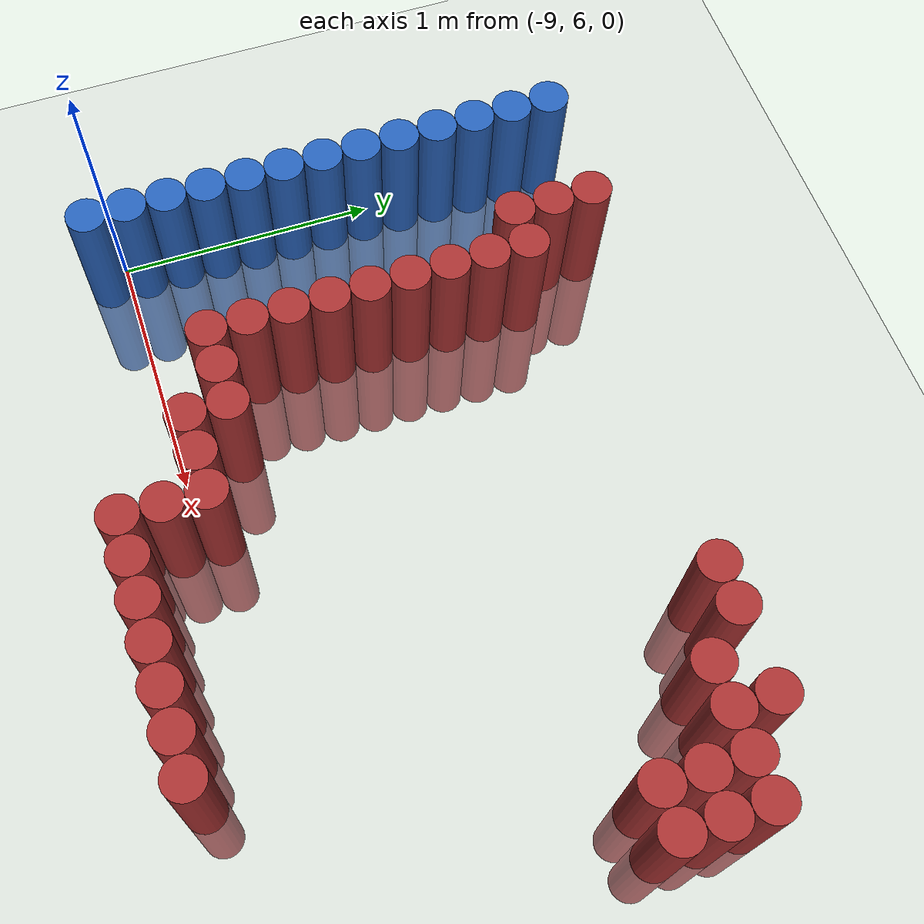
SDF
<sdf version="1.6">
 <world name="default">
  <model name="ground_plane">
   <static>1</static>
   <link name="link">
    <collision name="collision">
     <geometry><plane><normal>0 0 1</normal><size>100 100</size></plane></geometry>
     <surface><friction><ode><mu>100</mu><mu2>50</mu2></ode></friction></surface>
    </collision>
    <visual name="visual">
     <cast_shadows>0</cast_shadows>
     <geometry><plane><normal>0 0 1</normal><size>100 100</size></plane></geometry>
     <material>
      <script><uri>file://media/materials/scripts/gazebo.material</uri><name>Gazebo/Grey</name></script>
     </material>
    </visual>
   </link>
  </model>
  <model name="unit_cylinder_130">
   <static>1</static>
   <pose>-8.925000 5.925000 0.000000 0.000000 0.000000 0.000000</pose>
   <link name="link">
    <inertial>
     <mass>1</mass>
     <inertia><ixx>0.145833</ixx><ixy>0</ixy><ixz>0</ixz><iyy>0.145833</iyy><iyz>0</iyz><izz>0.125</izz></inertia>
    </inertial>
    <collision name="collision">
     <geometry><cylinder><radius>0.075000</radius><length>1</length></cylinder></geometry>
    </collision>
    <visual name="visual">
     <geometry><cylinder><radius>0.075000</radius><length>1</length></cylinder></geometry>
     <material>
      <ambient>0.152000 0.379000 0.720000 1</ambient>
      <diffuse>0.152000 0.379000 0.720000 1</diffuse>
     </material>
     <material>
      <script><name>Gazebo/Grey</name><uri>file://media/materials/scripts/gazebo.material</uri></script>
     </material>
    </visual>
   </link>
  </model>
  <model name="unit_cylinder_131">
   <static>1</static>
   <pose>-8.925000 6.075000 0.000000 0.000000 0.000000 0.000000</pose>
   <link name="link">
    <inertial>
     <mass>1</mass>
     <inertia><ixx>0.145833</ixx><ixy>0</ixy><ixz>0</ixz><iyy>0.145833</iyy><iyz>0</iyz><izz>0.125</izz></inertia>
    </inertial>
    <collision name="collision">
     <geometry><cylinder><radius>0.075000</radius><length>1</length></cylinder></geometry>
    </collision>
    <visual name="visual">
     <geometry><cylinder><radius>0.075000</radius><length>1</length></cylinder></geometry>
     <material>
      <ambient>0.152000 0.379000 0.720000 1</ambient>
      <diffuse>0.152000 0.379000 0.720000 1</diffuse>
     </material>
     <material>
      <script><name>Gazebo/Grey</name><uri>file://media/materials/scripts/gazebo.material</uri></script>
     </material>
    </visual>
   </link>
  </model>
  <model name="unit_cylinder_132">
   <static>1</static>
   <pose>-8.925000 6.225000 0.000000 0.000000 0.000000 0.000000</pose>
   <link name="link">
    <inertial>
     <mass>1</mass>
     <inertia><ixx>0.145833</ixx><ixy>0</ixy><ixz>0</ixz><iyy>0.145833</iyy><iyz>0</iyz><izz>0.125</izz></inertia>
    </inertial>
    <collision name="collision">
     <geometry><cylinder><radius>0.075000</radius><length>1</length></cylinder></geometry>
    </collision>
    <visual name="visual">
     <geometry><cylinder><radius>0.075000</radius><length>1</length></cylinder></geometry>
     <material>
      <ambient>0.152000 0.379000 0.720000 1</ambient>
      <diffuse>0.152000 0.379000 0.720000 1</diffuse>
     </material>
     <material>
      <script><name>Gazebo/Grey</name><uri>file://media/materials/scripts/gazebo.material</uri></script>
     </material>
    </visual>
   </link>
  </model>
  <model name="unit_cylinder_133">
   <static>1</static>
   <pose>-8.925000 6.375000 0.000000 0.000000 0.000000 0.000000</pose>
   <link name="link">
    <inertial>
     <mass>1</mass>
     <inertia><ixx>0.145833</ixx><ixy>0</ixy><ixz>0</ixz><iyy>0.145833</iyy><iyz>0</iyz><izz>0.125</izz></inertia>
    </inertial>
    <collision name="collision">
     <geometry><cylinder><radius>0.075000</radius><length>1</length></cylinder></geometry>
    </collision>
    <visual name="visual">
     <geometry><cylinder><radius>0.075000</radius><length>1</length></cylinder></geometry>
     <material>
      <ambient>0.152000 0.379000 0.720000 1</ambient>
      <diffuse>0.152000 0.379000 0.720000 1</diffuse>
     </material>
     <material>
      <script><name>Gazebo/Grey</name><uri>file://media/materials/scripts/gazebo.material</uri></script>
     </material>
    </visual>
   </link>
  </model>
  <model name="unit_cylinder_134">
   <static>1</static>
   <pose>-8.925000 6.525000 0.000000 0.000000 0.000000 0.000000</pose>
   <link name="link">
    <inertial>
     <mass>1</mass>
     <inertia><ixx>0.145833</ixx><ixy>0</ixy><ixz>0</ixz><iyy>0.145833</iyy><iyz>0</iyz><izz>0.125</izz></inertia>
    </inertial>
    <collision name="collision">
     <geometry><cylinder><radius>0.075000</radius><length>1</length></cylinder></geometry>
    </collision>
    <visual name="visual">
     <geometry><cylinder><radius>0.075000</radius><length>1</length></cylinder></geometry>
     <material>
      <ambient>0.152000 0.379000 0.720000 1</ambient>
      <diffuse>0.152000 0.379000 0.720000 1</diffuse>
     </material>
     <material>
      <script><name>Gazebo/Grey</name><uri>file://media/materials/scripts/gazebo.material</uri></script>
     </material>
    </visual>
   </link>
  </model>
  <model name="unit_cylinder_135">
   <static>1</static>
   <pose>-8.925000 6.675000 0.000000 0.000000 0.000000 0.000000</pose>
   <link name="link">
    <inertial>
     <mass>1</mass>
     <inertia><ixx>0.145833</ixx><ixy>0</ixy><ixz>0</ixz><iyy>0.145833</iyy><iyz>0</iyz><izz>0.125</izz></inertia>
    </inertial>
    <collision name="collision">
     <geometry><cylinder><radius>0.075000</radius><length>1</length></cylinder></geometry>
    </collision>
    <visual name="visual">
     <geometry><cylinder><radius>0.075000</radius><length>1</length></cylinder></geometry>
     <material>
      <ambient>0.152000 0.379000 0.720000 1</ambient>
      <diffuse>0.152000 0.379000 0.720000 1</diffuse>
     </material>
     <material>
      <script><name>Gazebo/Grey</name><uri>file://media/materials/scripts/gazebo.material</uri></script>
     </material>
    </visual>
   </link>
  </model>
  <model name="unit_cylinder_136">
   <static>1</static>
   <pose>-8.925000 6.825000 0.000000 0.000000 0.000000 0.000000</pose>
   <link name="link">
    <inertial>
     <mass>1</mass>
     <inertia><ixx>0.145833</ixx><ixy>0</ixy><ixz>0</ixz><iyy>0.145833</iyy><iyz>0</iyz><izz>0.125</izz></inertia>
    </inertial>
    <collision name="collision">
     <geometry><cylinder><radius>0.075000</radius><length>1</length></cylinder></geometry>
    </collision>
    <visual name="visual">
     <geometry><cylinder><radius>0.075000</radius><length>1</length></cylinder></geometry>
     <material>
      <ambient>0.152000 0.379000 0.720000 1</ambient>
      <diffuse>0.152000 0.379000 0.720000 1</diffuse>
     </material>
     <material>
      <script><name>Gazebo/Grey</name><uri>file://media/materials/scripts/gazebo.material</uri></script>
     </material>
    </visual>
   </link>
  </model>
  <model name="unit_cylinder_137">
   <static>1</static>
   <pose>-8.925000 6.975000 0.000000 0.000000 0.000000 0.000000</pose>
   <link name="link">
    <inertial>
     <mass>1</mass>
     <inertia><ixx>0.145833</ixx><ixy>0</ixy><ixz>0</ixz><iyy>0.145833</iyy><iyz>0</iyz><izz>0.125</izz></inertia>
    </inertial>
    <collision name="collision">
     <geometry><cylinder><radius>0.075000</radius><length>1</length></cylinder></geometry>
    </collision>
    <visual name="visual">
     <geometry><cylinder><radius>0.075000</radius><length>1</length></cylinder></geometry>
     <material>
      <ambient>0.152000 0.379000 0.720000 1</ambient>
      <diffuse>0.152000 0.379000 0.720000 1</diffuse>
     </material>
     <material>
      <script><name>Gazebo/Grey</name><uri>file://media/materials/scripts/gazebo.material</uri></script>
     </material>
    </visual>
   </link>
  </model>
  <model name="unit_cylinder_138">
   <static>1</static>
   <pose>-8.925000 7.125000 0.000000 0.000000 0.000000 0.000000</pose>
   <link name="link">
    <inertial>
     <mass>1</mass>
     <inertia><ixx>0.145833</ixx><ixy>0</ixy><ixz>0</ixz><iyy>0.145833</iyy><iyz>0</iyz><izz>0.125</izz></inertia>
    </inertial>
    <collision name="collision">
     <geometry><cylinder><radius>0.075000</radius><length>1</length></cylinder></geometry>
    </collision>
    <visual name="visual">
     <geometry><cylinder><radius>0.075000</radius><length>1</length></cylinder></geometry>
     <material>
      <ambient>0.152000 0.379000 0.720000 1</ambient>
      <diffuse>0.152000 0.379000 0.720000 1</diffuse>
     </material>
     <material>
      <script><name>Gazebo/Grey</name><uri>file://media/materials/scripts/gazebo.material</uri></script>
     </material>
    </visual>
   </link>
  </model>
  <model name="unit_cylinder_139">
   <static>1</static>
   <pose>-8.925000 7.275000 0.000000 0.000000 0.000000 0.000000</pose>
   <link name="link">
    <inertial>
     <mass>1</mass>
     <inertia><ixx>0.145833</ixx><ixy>0</ixy><ixz>0</ixz><iyy>0.145833</iyy><iyz>0</iyz><izz>0.125</izz></inertia>
    </inertial>
    <collision name="collision">
     <geometry><cylinder><radius>0.075000</radius><length>1</length></cylinder></geometry>
    </collision>
    <visual name="visual">
     <geometry><cylinder><radius>0.075000</radius><length>1</length></cylinder></geometry>
     <material>
      <ambient>0.152000 0.379000 0.720000 1</ambient>
      <diffuse>0.152000 0.379000 0.720000 1</diffuse>
     </material>
     <material>
      <script><name>Gazebo/Grey</name><uri>file://media/materials/scripts/gazebo.material</uri></script>
     </material>
    </visual>
   </link>
  </model>
  <model name="unit_cylinder_140">
   <static>1</static>
   <pose>-8.925000 7.425000 0.000000 0.000000 0.000000 0.000000</pose>
   <link name="link">
    <inertial>
     <mass>1</mass>
     <inertia><ixx>0.145833</ixx><ixy>0</ixy><ixz>0</ixz><iyy>0.145833</iyy><iyz>0</iyz><izz>0.125</izz></inertia>
    </inertial>
    <collision name="collision">
     <geometry><cylinder><radius>0.075000</radius><length>1</length></cylinder></geometry>
    </collision>
    <visual name="visual">
     <geometry><cylinder><radius>0.075000</radius><length>1</length></cylinder></geometry>
     <material>
      <ambient>0.152000 0.379000 0.720000 1</ambient>
      <diffuse>0.152000 0.379000 0.720000 1</diffuse>
     </material>
     <material>
      <script><name>Gazebo/Grey</name><uri>file://media/materials/scripts/gazebo.material</uri></script>
     </material>
    </visual>
   </link>
  </model>
  <model name="unit_cylinder_141">
   <static>1</static>
   <pose>-8.925000 7.575000 0.000000 0.000000 0.000000 0.000000</pose>
   <link name="link">
    <inertial>
     <mass>1</mass>
     <inertia><ixx>0.145833</ixx><ixy>0</ixy><ixz>0</ixz><iyy>0.145833</iyy><iyz>0</iyz><izz>0.125</izz></inertia>
    </inertial>
    <collision name="collision">
     <geometry><cylinder><radius>0.075000</radius><length>1</length></cylinder></geometry>
    </collision>
    <visual name="visual">
     <geometry><cylinder><radius>0.075000</radius><length>1</length></cylinder></geometry>
     <material>
      <ambient>0.152000 0.379000 0.720000 1</ambient>
      <diffuse>0.152000 0.379000 0.720000 1</diffuse>
     </material>
     <material>
      <script><name>Gazebo/Grey</name><uri>file://media/materials/scripts/gazebo.material</uri></script>
     </material>
    </visual>
   </link>
  </model>
  <model name="unit_cylinder_142">
   <static>1</static>
   <pose>-8.925000 7.725000 0.000000 0.000000 0.000000 0.000000</pose>
   <link name="link">
    <inertial>
     <mass>1</mass>
     <inertia><ixx>0.145833</ixx><ixy>0</ixy><ixz>0</ixz><iyy>0.145833</iyy><iyz>0</iyz><izz>0.125</izz></inertia>
    </inertial>
    <collision name="collision">
     <geometry><cylinder><radius>0.075000</radius><length>1</length></cylinder></geometry>
    </collision>
    <visual name="visual">
     <geometry><cylinder><radius>0.075000</radius><length>1</length></cylinder></geometry>
     <material>
      <ambient>0.152000 0.379000 0.720000 1</ambient>
      <diffuse>0.152000 0.379000 0.720000 1</diffuse>
     </material>
     <material>
      <script><name>Gazebo/Grey</name><uri>file://media/materials/scripts/gazebo.material</uri></script>
     </material>
    </visual>
   </link>
  </model>
  <model name="unit_cylinder_160">
   <static>1</static>
   <pose>-8.475000 7.425000 0.000000 0.000000 0.000000 0.000000</pose>
   <link name="link">
    <inertial>
     <mass>1</mass>
     <inertia><ixx>0.145833</ixx><ixy>0</ixy><ixz>0</ixz><iyy>0.145833</iyy><iyz>0</iyz><izz>0.125</izz></inertia>
    </inertial>
    <collision name="collision">
     <geometry><cylinder><radius>0.075000</radius><length>1</length></cylinder></geometry>
    </collision>
    <visual name="visual">
     <geometry><cylinder><radius>0.075000</radius><length>1</length></cylinder></geometry>
     <material>
      <ambient>0.648000 0.192000 0.192000 1</ambient>
      <diffuse>0.648000 0.192000 0.192000 1</diffuse>
     </material>
     <material>
      <script><name>Gazebo/Grey</name><uri>file://media/materials/scripts/gazebo.material</uri></script>
     </material>
    </visual>
   </link>
  </model>
  <model name="unit_cylinder_161">
   <static>1</static>
   <pose>-8.475000 7.575000 0.000000 0.000000 0.000000 0.000000</pose>
   <link name="link">
    <inertial>
     <mass>1</mass>
     <inertia><ixx>0.145833</ixx><ixy>0</ixy><ixz>0</ixz><iyy>0.145833</iyy><iyz>0</iyz><izz>0.125</izz></inertia>
    </inertial>
    <collision name="collision">
     <geometry><cylinder><radius>0.075000</radius><length>1</length></cylinder></geometry>
    </collision>
    <visual name="visual">
     <geometry><cylinder><radius>0.075000</radius><length>1</length></cylinder></geometry>
     <material>
      <ambient>0.648000 0.192000 0.192000 1</ambient>
      <diffuse>0.648000 0.192000 0.192000 1</diffuse>
     </material>
     <material>
      <script><name>Gazebo/Grey</name><uri>file://media/materials/scripts/gazebo.material</uri></script>
     </material>
    </visual>
   </link>
  </model>
  <model name="unit_cylinder_162">
   <static>1</static>
   <pose>-8.475000 7.725000 0.000000 0.000000 0.000000 0.000000</pose>
   <link name="link">
    <inertial>
     <mass>1</mass>
     <inertia><ixx>0.145833</ixx><ixy>0</ixy><ixz>0</ixz><iyy>0.145833</iyy><iyz>0</iyz><izz>0.125</izz></inertia>
    </inertial>
    <collision name="collision">
     <geometry><cylinder><radius>0.075000</radius><length>1</length></cylinder></geometry>
    </collision>
    <visual name="visual">
     <geometry><cylinder><radius>0.075000</radius><length>1</length></cylinder></geometry>
     <material>
      <ambient>0.648000 0.192000 0.192000 1</ambient>
      <diffuse>0.648000 0.192000 0.192000 1</diffuse>
     </material>
     <material>
      <script><name>Gazebo/Grey</name><uri>file://media/materials/scripts/gazebo.material</uri></script>
     </material>
    </visual>
   </link>
  </model>
  <model name="unit_cylinder_176">
   <static>1</static>
   <pose>-8.325000 6.225000 0.000000 0.000000 0.000000 0.000000</pose>
   <link name="link">
    <inertial>
     <mass>1</mass>
     <inertia><ixx>0.145833</ixx><ixy>0</ixy><ixz>0</ixz><iyy>0.145833</iyy><iyz>0</iyz><izz>0.125</izz></inertia>
    </inertial>
    <collision name="collision">
     <geometry><cylinder><radius>0.075000</radius><length>1</length></cylinder></geometry>
    </collision>
    <visual name="visual">
     <geometry><cylinder><radius>0.075000</radius><length>1</length></cylinder></geometry>
     <material>
      <ambient>0.648000 0.192000 0.192000 1</ambient>
      <diffuse>0.648000 0.192000 0.192000 1</diffuse>
     </material>
     <material>
      <script><name>Gazebo/Grey</name><uri>file://media/materials/scripts/gazebo.material</uri></script>
     </material>
    </visual>
   </link>
  </model>
  <model name="unit_cylinder_177">
   <static>1</static>
   <pose>-8.325000 6.375000 0.000000 0.000000 0.000000 0.000000</pose>
   <link name="link">
    <inertial>
     <mass>1</mass>
     <inertia><ixx>0.145833</ixx><ixy>0</ixy><ixz>0</ixz><iyy>0.145833</iyy><iyz>0</iyz><izz>0.125</izz></inertia>
    </inertial>
    <collision name="collision">
     <geometry><cylinder><radius>0.075000</radius><length>1</length></cylinder></geometry>
    </collision>
    <visual name="visual">
     <geometry><cylinder><radius>0.075000</radius><length>1</length></cylinder></geometry>
     <material>
      <ambient>0.648000 0.192000 0.192000 1</ambient>
      <diffuse>0.648000 0.192000 0.192000 1</diffuse>
     </material>
     <material>
      <script><name>Gazebo/Grey</name><uri>file://media/materials/scripts/gazebo.material</uri></script>
     </material>
    </visual>
   </link>
  </model>
  <model name="unit_cylinder_178">
   <static>1</static>
   <pose>-8.325000 6.525000 0.000000 0.000000 0.000000 0.000000</pose>
   <link name="link">
    <inertial>
     <mass>1</mass>
     <inertia><ixx>0.145833</ixx><ixy>0</ixy><ixz>0</ixz><iyy>0.145833</iyy><iyz>0</iyz><izz>0.125</izz></inertia>
    </inertial>
    <collision name="collision">
     <geometry><cylinder><radius>0.075000</radius><length>1</length></cylinder></geometry>
    </collision>
    <visual name="visual">
     <geometry><cylinder><radius>0.075000</radius><length>1</length></cylinder></geometry>
     <material>
      <ambient>0.648000 0.192000 0.192000 1</ambient>
      <diffuse>0.648000 0.192000 0.192000 1</diffuse>
     </material>
     <material>
      <script><name>Gazebo/Grey</name><uri>file://media/materials/scripts/gazebo.material</uri></script>
     </material>
    </visual>
   </link>
  </model>
  <model name="unit_cylinder_179">
   <static>1</static>
   <pose>-8.325000 6.675000 0.000000 0.000000 0.000000 0.000000</pose>
   <link name="link">
    <inertial>
     <mass>1</mass>
     <inertia><ixx>0.145833</ixx><ixy>0</ixy><ixz>0</ixz><iyy>0.145833</iyy><iyz>0</iyz><izz>0.125</izz></inertia>
    </inertial>
    <collision name="collision">
     <geometry><cylinder><radius>0.075000</radius><length>1</length></cylinder></geometry>
    </collision>
    <visual name="visual">
     <geometry><cylinder><radius>0.075000</radius><length>1</length></cylinder></geometry>
     <material>
      <ambient>0.648000 0.192000 0.192000 1</ambient>
      <diffuse>0.648000 0.192000 0.192000 1</diffuse>
     </material>
     <material>
      <script><name>Gazebo/Grey</name><uri>file://media/materials/scripts/gazebo.material</uri></script>
     </material>
    </visual>
   </link>
  </model>
  <model name="unit_cylinder_180">
   <static>1</static>
   <pose>-8.325000 6.825000 0.000000 0.000000 0.000000 0.000000</pose>
   <link name="link">
    <inertial>
     <mass>1</mass>
     <inertia><ixx>0.145833</ixx><ixy>0</ixy><ixz>0</ixz><iyy>0.145833</iyy><iyz>0</iyz><izz>0.125</izz></inertia>
    </inertial>
    <collision name="collision">
     <geometry><cylinder><radius>0.075000</radius><length>1</length></cylinder></geometry>
    </collision>
    <visual name="visual">
     <geometry><cylinder><radius>0.075000</radius><length>1</length></cylinder></geometry>
     <material>
      <ambient>0.648000 0.192000 0.192000 1</ambient>
      <diffuse>0.648000 0.192000 0.192000 1</diffuse>
     </material>
     <material>
      <script><name>Gazebo/Grey</name><uri>file://media/materials/scripts/gazebo.material</uri></script>
     </material>
    </visual>
   </link>
  </model>
  <model name="unit_cylinder_181">
   <static>1</static>
   <pose>-8.325000 6.975000 0.000000 0.000000 0.000000 0.000000</pose>
   <link name="link">
    <inertial>
     <mass>1</mass>
     <inertia><ixx>0.145833</ixx><ixy>0</ixy><ixz>0</ixz><iyy>0.145833</iyy><iyz>0</iyz><izz>0.125</izz></inertia>
    </inertial>
    <collision name="collision">
     <geometry><cylinder><radius>0.075000</radius><length>1</length></cylinder></geometry>
    </collision>
    <visual name="visual">
     <geometry><cylinder><radius>0.075000</radius><length>1</length></cylinder></geometry>
     <material>
      <ambient>0.648000 0.192000 0.192000 1</ambient>
      <diffuse>0.648000 0.192000 0.192000 1</diffuse>
     </material>
     <material>
      <script><name>Gazebo/Grey</name><uri>file://media/materials/scripts/gazebo.material</uri></script>
     </material>
    </visual>
   </link>
  </model>
  <model name="unit_cylinder_182">
   <static>1</static>
   <pose>-8.325000 7.125000 0.000000 0.000000 0.000000 0.000000</pose>
   <link name="link">
    <inertial>
     <mass>1</mass>
     <inertia><ixx>0.145833</ixx><ixy>0</ixy><ixz>0</ixz><iyy>0.145833</iyy><iyz>0</iyz><izz>0.125</izz></inertia>
    </inertial>
    <collision name="collision">
     <geometry><cylinder><radius>0.075000</radius><length>1</length></cylinder></geometry>
    </collision>
    <visual name="visual">
     <geometry><cylinder><radius>0.075000</radius><length>1</length></cylinder></geometry>
     <material>
      <ambient>0.648000 0.192000 0.192000 1</ambient>
      <diffuse>0.648000 0.192000 0.192000 1</diffuse>
     </material>
     <material>
      <script><name>Gazebo/Grey</name><uri>file://media/materials/scripts/gazebo.material</uri></script>
     </material>
    </visual>
   </link>
  </model>
  <model name="unit_cylinder_183">
   <static>1</static>
   <pose>-8.325000 7.275000 0.000000 0.000000 0.000000 0.000000</pose>
   <link name="link">
    <inertial>
     <mass>1</mass>
     <inertia><ixx>0.145833</ixx><ixy>0</ixy><ixz>0</ixz><iyy>0.145833</iyy><iyz>0</iyz><izz>0.125</izz></inertia>
    </inertial>
    <collision name="collision">
     <geometry><cylinder><radius>0.075000</radius><length>1</length></cylinder></geometry>
    </collision>
    <visual name="visual">
     <geometry><cylinder><radius>0.075000</radius><length>1</length></cylinder></geometry>
     <material>
      <ambient>0.648000 0.192000 0.192000 1</ambient>
      <diffuse>0.648000 0.192000 0.192000 1</diffuse>
     </material>
     <material>
      <script><name>Gazebo/Grey</name><uri>file://media/materials/scripts/gazebo.material</uri></script>
     </material>
    </visual>
   </link>
  </model>
  <model name="unit_cylinder_184">
   <static>1</static>
   <pose>-8.325000 7.425000 0.000000 0.000000 0.000000 0.000000</pose>
   <link name="link">
    <inertial>
     <mass>1</mass>
     <inertia><ixx>0.145833</ixx><ixy>0</ixy><ixz>0</ixz><iyy>0.145833</iyy><iyz>0</iyz><izz>0.125</izz></inertia>
    </inertial>
    <collision name="collision">
     <geometry><cylinder><radius>0.075000</radius><length>1</length></cylinder></geometry>
    </collision>
    <visual name="visual">
     <geometry><cylinder><radius>0.075000</radius><length>1</length></cylinder></geometry>
     <material>
      <ambient>0.648000 0.192000 0.192000 1</ambient>
      <diffuse>0.648000 0.192000 0.192000 1</diffuse>
     </material>
     <material>
      <script><name>Gazebo/Grey</name><uri>file://media/materials/scripts/gazebo.material</uri></script>
     </material>
    </visual>
   </link>
  </model>
  <model name="unit_cylinder_186">
   <static>1</static>
   <pose>-8.175000 6.225000 0.000000 0.000000 0.000000 0.000000</pose>
   <link name="link">
    <inertial>
     <mass>1</mass>
     <inertia><ixx>0.145833</ixx><ixy>0</ixy><ixz>0</ixz><iyy>0.145833</iyy><iyz>0</iyz><izz>0.125</izz></inertia>
    </inertial>
    <collision name="collision">
     <geometry><cylinder><radius>0.075000</radius><length>1</length></cylinder></geometry>
    </collision>
    <visual name="visual">
     <geometry><cylinder><radius>0.075000</radius><length>1</length></cylinder></geometry>
     <material>
      <ambient>0.648000 0.192000 0.192000 1</ambient>
      <diffuse>0.648000 0.192000 0.192000 1</diffuse>
     </material>
     <material>
      <script><name>Gazebo/Grey</name><uri>file://media/materials/scripts/gazebo.material</uri></script>
     </material>
    </visual>
   </link>
  </model>
  <model name="unit_cylinder_188">
   <static>1</static>
   <pose>-8.025000 6.075000 0.000000 0.000000 0.000000 0.000000</pose>
   <link name="link">
    <inertial>
     <mass>1</mass>
     <inertia><ixx>0.145833</ixx><ixy>0</ixy><ixz>0</ixz><iyy>0.145833</iyy><iyz>0</iyz><izz>0.125</izz></inertia>
    </inertial>
    <collision name="collision">
     <geometry><cylinder><radius>0.075000</radius><length>1</length></cylinder></geometry>
    </collision>
    <visual name="visual">
     <geometry><cylinder><radius>0.075000</radius><length>1</length></cylinder></geometry>
     <material>
      <ambient>0.648000 0.192000 0.192000 1</ambient>
      <diffuse>0.648000 0.192000 0.192000 1</diffuse>
     </material>
     <material>
      <script><name>Gazebo/Grey</name><uri>file://media/materials/scripts/gazebo.material</uri></script>
     </material>
    </visual>
   </link>
  </model>
  <model name="unit_cylinder_189">
   <static>1</static>
   <pose>-8.025000 6.225000 0.000000 0.000000 0.000000 0.000000</pose>
   <link name="link">
    <inertial>
     <mass>1</mass>
     <inertia><ixx>0.145833</ixx><ixy>0</ixy><ixz>0</ixz><iyy>0.145833</iyy><iyz>0</iyz><izz>0.125</izz></inertia>
    </inertial>
    <collision name="collision">
     <geometry><cylinder><radius>0.075000</radius><length>1</length></cylinder></geometry>
    </collision>
    <visual name="visual">
     <geometry><cylinder><radius>0.075000</radius><length>1</length></cylinder></geometry>
     <material>
      <ambient>0.648000 0.192000 0.192000 1</ambient>
      <diffuse>0.648000 0.192000 0.192000 1</diffuse>
     </material>
     <material>
      <script><name>Gazebo/Grey</name><uri>file://media/materials/scripts/gazebo.material</uri></script>
     </material>
    </visual>
   </link>
  </model>
  <model name="unit_cylinder_191">
   <static>1</static>
   <pose>-7.875000 6.075000 0.000000 0.000000 0.000000 0.000000</pose>
   <link name="link">
    <inertial>
     <mass>1</mass>
     <inertia><ixx>0.145833</ixx><ixy>0</ixy><ixz>0</ixz><iyy>0.145833</iyy><iyz>0</iyz><izz>0.125</izz></inertia>
    </inertial>
    <collision name="collision">
     <geometry><cylinder><radius>0.075000</radius><length>1</length></cylinder></geometry>
    </collision>
    <visual name="visual">
     <geometry><cylinder><radius>0.075000</radius><length>1</length></cylinder></geometry>
     <material>
      <ambient>0.648000 0.192000 0.192000 1</ambient>
      <diffuse>0.648000 0.192000 0.192000 1</diffuse>
     </material>
     <material>
      <script><name>Gazebo/Grey</name><uri>file://media/materials/scripts/gazebo.material</uri></script>
     </material>
    </visual>
   </link>
  </model>
  <model name="unit_cylinder_193">
   <static>1</static>
   <pose>-7.725000 5.775000 0.000000 0.000000 0.000000 0.000000</pose>
   <link name="link">
    <inertial>
     <mass>1</mass>
     <inertia><ixx>0.145833</ixx><ixy>0</ixy><ixz>0</ixz><iyy>0.145833</iyy><iyz>0</iyz><izz>0.125</izz></inertia>
    </inertial>
    <collision name="collision">
     <geometry><cylinder><radius>0.075000</radius><length>1</length></cylinder></geometry>
    </collision>
    <visual name="visual">
     <geometry><cylinder><radius>0.075000</radius><length>1</length></cylinder></geometry>
     <material>
      <ambient>0.648000 0.192000 0.192000 1</ambient>
      <diffuse>0.648000 0.192000 0.192000 1</diffuse>
     </material>
     <material>
      <script><name>Gazebo/Grey</name><uri>file://media/materials/scripts/gazebo.material</uri></script>
     </material>
    </visual>
   </link>
  </model>
  <model name="unit_cylinder_194">
   <static>1</static>
   <pose>-7.725000 5.925000 0.000000 0.000000 0.000000 0.000000</pose>
   <link name="link">
    <inertial>
     <mass>1</mass>
     <inertia><ixx>0.145833</ixx><ixy>0</ixy><ixz>0</ixz><iyy>0.145833</iyy><iyz>0</iyz><izz>0.125</izz></inertia>
    </inertial>
    <collision name="collision">
     <geometry><cylinder><radius>0.075000</radius><length>1</length></cylinder></geometry>
    </collision>
    <visual name="visual">
     <geometry><cylinder><radius>0.075000</radius><length>1</length></cylinder></geometry>
     <material>
      <ambient>0.648000 0.192000 0.192000 1</ambient>
      <diffuse>0.648000 0.192000 0.192000 1</diffuse>
     </material>
     <material>
      <script><name>Gazebo/Grey</name><uri>file://media/materials/scripts/gazebo.material</uri></script>
     </material>
    </visual>
   </link>
  </model>
  <model name="unit_cylinder_195">
   <static>1</static>
   <pose>-7.725000 6.075000 0.000000 0.000000 0.000000 0.000000</pose>
   <link name="link">
    <inertial>
     <mass>1</mass>
     <inertia><ixx>0.145833</ixx><ixy>0</ixy><ixz>0</ixz><iyy>0.145833</iyy><iyz>0</iyz><izz>0.125</izz></inertia>
    </inertial>
    <collision name="collision">
     <geometry><cylinder><radius>0.075000</radius><length>1</length></cylinder></geometry>
    </collision>
    <visual name="visual">
     <geometry><cylinder><radius>0.075000</radius><length>1</length></cylinder></geometry>
     <material>
      <ambient>0.648000 0.192000 0.192000 1</ambient>
      <diffuse>0.648000 0.192000 0.192000 1</diffuse>
     </material>
     <material>
      <script><name>Gazebo/Grey</name><uri>file://media/materials/scripts/gazebo.material</uri></script>
     </material>
    </visual>
   </link>
  </model>
  <model name="unit_cylinder_197">
   <static>1</static>
   <pose>-7.575000 5.775000 0.000000 0.000000 0.000000 0.000000</pose>
   <link name="link">
    <inertial>
     <mass>1</mass>
     <inertia><ixx>0.145833</ixx><ixy>0</ixy><ixz>0</ixz><iyy>0.145833</iyy><iyz>0</iyz><izz>0.125</izz></inertia>
    </inertial>
    <collision name="collision">
     <geometry><cylinder><radius>0.075000</radius><length>1</length></cylinder></geometry>
    </collision>
    <visual name="visual">
     <geometry><cylinder><radius>0.075000</radius><length>1</length></cylinder></geometry>
     <material>
      <ambient>0.648000 0.192000 0.192000 1</ambient>
      <diffuse>0.648000 0.192000 0.192000 1</diffuse>
     </material>
     <material>
      <script><name>Gazebo/Grey</name><uri>file://media/materials/scripts/gazebo.material</uri></script>
     </material>
    </visual>
   </link>
  </model>
  <model name="unit_cylinder_199">
   <static>1</static>
   <pose>-7.425000 5.775000 0.000000 0.000000 0.000000 0.000000</pose>
   <link name="link">
    <inertial>
     <mass>1</mass>
     <inertia><ixx>0.145833</ixx><ixy>0</ixy><ixz>0</ixz><iyy>0.145833</iyy><iyz>0</iyz><izz>0.125</izz></inertia>
    </inertial>
    <collision name="collision">
     <geometry><cylinder><radius>0.075000</radius><length>1</length></cylinder></geometry>
    </collision>
    <visual name="visual">
     <geometry><cylinder><radius>0.075000</radius><length>1</length></cylinder></geometry>
     <material>
      <ambient>0.648000 0.192000 0.192000 1</ambient>
      <diffuse>0.648000 0.192000 0.192000 1</diffuse>
     </material>
     <material>
      <script><name>Gazebo/Grey</name><uri>file://media/materials/scripts/gazebo.material</uri></script>
     </material>
    </visual>
   </link>
  </model>
  <model name="unit_cylinder_201">
   <static>1</static>
   <pose>-7.275000 5.775000 0.000000 0.000000 0.000000 0.000000</pose>
   <link name="link">
    <inertial>
     <mass>1</mass>
     <inertia><ixx>0.145833</ixx><ixy>0</ixy><ixz>0</ixz><iyy>0.145833</iyy><iyz>0</iyz><izz>0.125</izz></inertia>
    </inertial>
    <collision name="collision">
     <geometry><cylinder><radius>0.075000</radius><length>1</length></cylinder></geometry>
    </collision>
    <visual name="visual">
     <geometry><cylinder><radius>0.075000</radius><length>1</length></cylinder></geometry>
     <material>
      <ambient>0.648000 0.192000 0.192000 1</ambient>
      <diffuse>0.648000 0.192000 0.192000 1</diffuse>
     </material>
     <material>
      <script><name>Gazebo/Grey</name><uri>file://media/materials/scripts/gazebo.material</uri></script>
     </material>
    </visual>
   </link>
  </model>
  <model name="unit_cylinder_203">
   <static>1</static>
   <pose>-7.125000 5.775000 0.000000 0.000000 0.000000 0.000000</pose>
   <link name="link">
    <inertial>
     <mass>1</mass>
     <inertia><ixx>0.145833</ixx><ixy>0</ixy><ixz>0</ixz><iyy>0.145833</iyy><iyz>0</iyz><izz>0.125</izz></inertia>
    </inertial>
    <collision name="collision">
     <geometry><cylinder><radius>0.075000</radius><length>1</length></cylinder></geometry>
    </collision>
    <visual name="visual">
     <geometry><cylinder><radius>0.075000</radius><length>1</length></cylinder></geometry>
     <material>
      <ambient>0.648000 0.192000 0.192000 1</ambient>
      <diffuse>0.648000 0.192000 0.192000 1</diffuse>
     </material>
     <material>
      <script><name>Gazebo/Grey</name><uri>file://media/materials/scripts/gazebo.material</uri></script>
     </material>
    </visual>
   </link>
  </model>
  <model name="unit_cylinder_208">
   <static>1</static>
   <pose>-6.975000 5.775000 0.000000 0.000000 0.000000 0.000000</pose>
   <link name="link">
    <inertial>
     <mass>1</mass>
     <inertia><ixx>0.145833</ixx><ixy>0</ixy><ixz>0</ixz><iyy>0.145833</iyy><iyz>0</iyz><izz>0.125</izz></inertia>
    </inertial>
    <collision name="collision">
     <geometry><cylinder><radius>0.075000</radius><length>1</length></cylinder></geometry>
    </collision>
    <visual name="visual">
     <geometry><cylinder><radius>0.075000</radius><length>1</length></cylinder></geometry>
     <material>
      <ambient>0.648000 0.192000 0.192000 1</ambient>
      <diffuse>0.648000 0.192000 0.192000 1</diffuse>
     </material>
     <material>
      <script><name>Gazebo/Grey</name><uri>file://media/materials/scripts/gazebo.material</uri></script>
     </material>
    </visual>
   </link>
  </model>
  <model name="unit_cylinder_209">
   <static>1</static>
   <pose>-6.975000 7.575000 0.000000 0.000000 0.000000 0.000000</pose>
   <link name="link">
    <inertial>
     <mass>1</mass>
     <inertia><ixx>0.145833</ixx><ixy>0</ixy><ixz>0</ixz><iyy>0.145833</iyy><iyz>0</iyz><izz>0.125</izz></inertia>
    </inertial>
    <collision name="collision">
     <geometry><cylinder><radius>0.075000</radius><length>1</length></cylinder></geometry>
    </collision>
    <visual name="visual">
     <geometry><cylinder><radius>0.075000</radius><length>1</length></cylinder></geometry>
     <material>
      <ambient>0.648000 0.192000 0.192000 1</ambient>
      <diffuse>0.648000 0.192000 0.192000 1</diffuse>
     </material>
     <material>
      <script><name>Gazebo/Grey</name><uri>file://media/materials/scripts/gazebo.material</uri></script>
     </material>
    </visual>
   </link>
  </model>
  <model name="unit_cylinder_218">
   <static>1</static>
   <pose>-6.825000 5.775000 0.000000 0.000000 0.000000 0.000000</pose>
   <link name="link">
    <inertial>
     <mass>1</mass>
     <inertia><ixx>0.145833</ixx><ixy>0</ixy><ixz>0</ixz><iyy>0.145833</iyy><iyz>0</iyz><izz>0.125</izz></inertia>
    </inertial>
    <collision name="collision">
     <geometry><cylinder><radius>0.075000</radius><length>1</length></cylinder></geometry>
    </collision>
    <visual name="visual">
     <geometry><cylinder><radius>0.075000</radius><length>1</length></cylinder></geometry>
     <material>
      <ambient>0.648000 0.192000 0.192000 1</ambient>
      <diffuse>0.648000 0.192000 0.192000 1</diffuse>
     </material>
     <material>
      <script><name>Gazebo/Grey</name><uri>file://media/materials/scripts/gazebo.material</uri></script>
     </material>
    </visual>
   </link>
  </model>
  <model name="unit_cylinder_219">
   <static>1</static>
   <pose>-6.825000 7.575000 0.000000 0.000000 0.000000 0.000000</pose>
   <link name="link">
    <inertial>
     <mass>1</mass>
     <inertia><ixx>0.145833</ixx><ixy>0</ixy><ixz>0</ixz><iyy>0.145833</iyy><iyz>0</iyz><izz>0.125</izz></inertia>
    </inertial>
    <collision name="collision">
     <geometry><cylinder><radius>0.075000</radius><length>1</length></cylinder></geometry>
    </collision>
    <visual name="visual">
     <geometry><cylinder><radius>0.075000</radius><length>1</length></cylinder></geometry>
     <material>
      <ambient>0.648000 0.192000 0.192000 1</ambient>
      <diffuse>0.648000 0.192000 0.192000 1</diffuse>
     </material>
     <material>
      <script><name>Gazebo/Grey</name><uri>file://media/materials/scripts/gazebo.material</uri></script>
     </material>
    </visual>
   </link>
  </model>
  <model name="unit_cylinder_226">
   <static>1</static>
   <pose>-6.675000 7.425000 0.000000 0.000000 0.000000 0.000000</pose>
   <link name="link">
    <inertial>
     <mass>1</mass>
     <inertia><ixx>0.145833</ixx><ixy>0</ixy><ixz>0</ixz><iyy>0.145833</iyy><iyz>0</iyz><izz>0.125</izz></inertia>
    </inertial>
    <collision name="collision">
     <geometry><cylinder><radius>0.075000</radius><length>1</length></cylinder></geometry>
    </collision>
    <visual name="visual">
     <geometry><cylinder><radius>0.075000</radius><length>1</length></cylinder></geometry>
     <material>
      <ambient>0.648000 0.192000 0.192000 1</ambient>
      <diffuse>0.648000 0.192000 0.192000 1</diffuse>
     </material>
     <material>
      <script><name>Gazebo/Grey</name><uri>file://media/materials/scripts/gazebo.material</uri></script>
     </material>
    </visual>
   </link>
  </model>
  <model name="unit_cylinder_232">
   <static>1</static>
   <pose>-6.525000 7.425000 0.000000 0.000000 0.000000 0.000000</pose>
   <link name="link">
    <inertial>
     <mass>1</mass>
     <inertia><ixx>0.145833</ixx><ixy>0</ixy><ixz>0</ixz><iyy>0.145833</iyy><iyz>0</iyz><izz>0.125</izz></inertia>
    </inertial>
    <collision name="collision">
     <geometry><cylinder><radius>0.075000</radius><length>1</length></cylinder></geometry>
    </collision>
    <visual name="visual">
     <geometry><cylinder><radius>0.075000</radius><length>1</length></cylinder></geometry>
     <material>
      <ambient>0.648000 0.192000 0.192000 1</ambient>
      <diffuse>0.648000 0.192000 0.192000 1</diffuse>
     </material>
     <material>
      <script><name>Gazebo/Grey</name><uri>file://media/materials/scripts/gazebo.material</uri></script>
     </material>
    </visual>
   </link>
  </model>
  <model name="unit_cylinder_233">
   <static>1</static>
   <pose>-6.525000 7.575000 0.000000 0.000000 0.000000 0.000000</pose>
   <link name="link">
    <inertial>
     <mass>1</mass>
     <inertia><ixx>0.145833</ixx><ixy>0</ixy><ixz>0</ixz><iyy>0.145833</iyy><iyz>0</iyz><izz>0.125</izz></inertia>
    </inertial>
    <collision name="collision">
     <geometry><cylinder><radius>0.075000</radius><length>1</length></cylinder></geometry>
    </collision>
    <visual name="visual">
     <geometry><cylinder><radius>0.075000</radius><length>1</length></cylinder></geometry>
     <material>
      <ambient>0.648000 0.192000 0.192000 1</ambient>
      <diffuse>0.648000 0.192000 0.192000 1</diffuse>
     </material>
     <material>
      <script><name>Gazebo/Grey</name><uri>file://media/materials/scripts/gazebo.material</uri></script>
     </material>
    </visual>
   </link>
  </model>
  <model name="unit_cylinder_237">
   <static>1</static>
   <pose>-6.375000 7.125000 0.000000 0.000000 0.000000 0.000000</pose>
   <link name="link">
    <inertial>
     <mass>1</mass>
     <inertia><ixx>0.145833</ixx><ixy>0</ixy><ixz>0</ixz><iyy>0.145833</iyy><iyz>0</iyz><izz>0.125</izz></inertia>
    </inertial>
    <collision name="collision">
     <geometry><cylinder><radius>0.075000</radius><length>1</length></cylinder></geometry>
    </collision>
    <visual name="visual">
     <geometry><cylinder><radius>0.075000</radius><length>1</length></cylinder></geometry>
     <material>
      <ambient>0.648000 0.192000 0.192000 1</ambient>
      <diffuse>0.648000 0.192000 0.192000 1</diffuse>
     </material>
     <material>
      <script><name>Gazebo/Grey</name><uri>file://media/materials/scripts/gazebo.material</uri></script>
     </material>
    </visual>
   </link>
  </model>
  <model name="unit_cylinder_238">
   <static>1</static>
   <pose>-6.375000 7.275000 0.000000 0.000000 0.000000 0.000000</pose>
   <link name="link">
    <inertial>
     <mass>1</mass>
     <inertia><ixx>0.145833</ixx><ixy>0</ixy><ixz>0</ixz><iyy>0.145833</iyy><iyz>0</iyz><izz>0.125</izz></inertia>
    </inertial>
    <collision name="collision">
     <geometry><cylinder><radius>0.075000</radius><length>1</length></cylinder></geometry>
    </collision>
    <visual name="visual">
     <geometry><cylinder><radius>0.075000</radius><length>1</length></cylinder></geometry>
     <material>
      <ambient>0.648000 0.192000 0.192000 1</ambient>
      <diffuse>0.648000 0.192000 0.192000 1</diffuse>
     </material>
     <material>
      <script><name>Gazebo/Grey</name><uri>file://media/materials/scripts/gazebo.material</uri></script>
     </material>
    </visual>
   </link>
  </model>
  <model name="unit_cylinder_239">
   <static>1</static>
   <pose>-6.375000 7.425000 0.000000 0.000000 0.000000 0.000000</pose>
   <link name="link">
    <inertial>
     <mass>1</mass>
     <inertia><ixx>0.145833</ixx><ixy>0</ixy><ixz>0</ixz><iyy>0.145833</iyy><iyz>0</iyz><izz>0.125</izz></inertia>
    </inertial>
    <collision name="collision">
     <geometry><cylinder><radius>0.075000</radius><length>1</length></cylinder></geometry>
    </collision>
    <visual name="visual">
     <geometry><cylinder><radius>0.075000</radius><length>1</length></cylinder></geometry>
     <material>
      <ambient>0.648000 0.192000 0.192000 1</ambient>
      <diffuse>0.648000 0.192000 0.192000 1</diffuse>
     </material>
     <material>
      <script><name>Gazebo/Grey</name><uri>file://media/materials/scripts/gazebo.material</uri></script>
     </material>
    </visual>
   </link>
  </model>
  <model name="unit_cylinder_245">
   <static>1</static>
   <pose>-6.225000 7.125000 0.000000 0.000000 0.000000 0.000000</pose>
   <link name="link">
    <inertial>
     <mass>1</mass>
     <inertia><ixx>0.145833</ixx><ixy>0</ixy><ixz>0</ixz><iyy>0.145833</iyy><iyz>0</iyz><izz>0.125</izz></inertia>
    </inertial>
    <collision name="collision">
     <geometry><cylinder><radius>0.075000</radius><length>1</length></cylinder></geometry>
    </collision>
    <visual name="visual">
     <geometry><cylinder><radius>0.075000</radius><length>1</length></cylinder></geometry>
     <material>
      <ambient>0.648000 0.192000 0.192000 1</ambient>
      <diffuse>0.648000 0.192000 0.192000 1</diffuse>
     </material>
     <material>
      <script><name>Gazebo/Grey</name><uri>file://media/materials/scripts/gazebo.material</uri></script>
     </material>
    </visual>
   </link>
  </model>
  <model name="unit_cylinder_246">
   <static>1</static>
   <pose>-6.225000 7.275000 0.000000 0.000000 0.000000 0.000000</pose>
   <link name="link">
    <inertial>
     <mass>1</mass>
     <inertia><ixx>0.145833</ixx><ixy>0</ixy><ixz>0</ixz><iyy>0.145833</iyy><iyz>0</iyz><izz>0.125</izz></inertia>
    </inertial>
    <collision name="collision">
     <geometry><cylinder><radius>0.075000</radius><length>1</length></cylinder></geometry>
    </collision>
    <visual name="visual">
     <geometry><cylinder><radius>0.075000</radius><length>1</length></cylinder></geometry>
     <material>
      <ambient>0.648000 0.192000 0.192000 1</ambient>
      <diffuse>0.648000 0.192000 0.192000 1</diffuse>
     </material>
     <material>
      <script><name>Gazebo/Grey</name><uri>file://media/materials/scripts/gazebo.material</uri></script>
     </material>
    </visual>
   </link>
  </model>
  <model name="unit_cylinder_247">
   <static>1</static>
   <pose>-6.225000 7.425000 0.000000 0.000000 0.000000 0.000000</pose>
   <link name="link">
    <inertial>
     <mass>1</mass>
     <inertia><ixx>0.145833</ixx><ixy>0</ixy><ixz>0</ixz><iyy>0.145833</iyy><iyz>0</iyz><izz>0.125</izz></inertia>
    </inertial>
    <collision name="collision">
     <geometry><cylinder><radius>0.075000</radius><length>1</length></cylinder></geometry>
    </collision>
    <visual name="visual">
     <geometry><cylinder><radius>0.075000</radius><length>1</length></cylinder></geometry>
     <material>
      <ambient>0.648000 0.192000 0.192000 1</ambient>
      <diffuse>0.648000 0.192000 0.192000 1</diffuse>
     </material>
     <material>
      <script><name>Gazebo/Grey</name><uri>file://media/materials/scripts/gazebo.material</uri></script>
     </material>
    </visual>
   </link>
  </model>
 </world>
</sdf>
